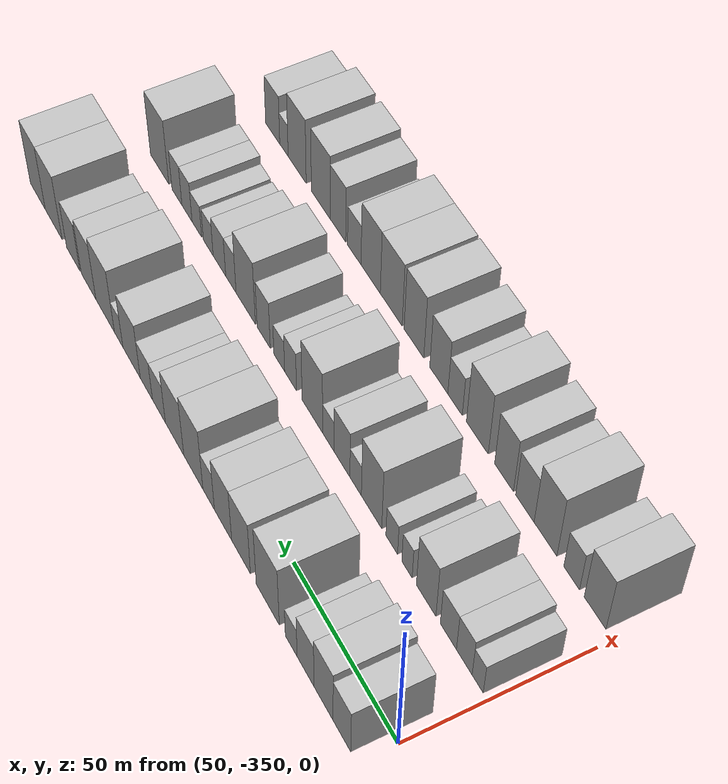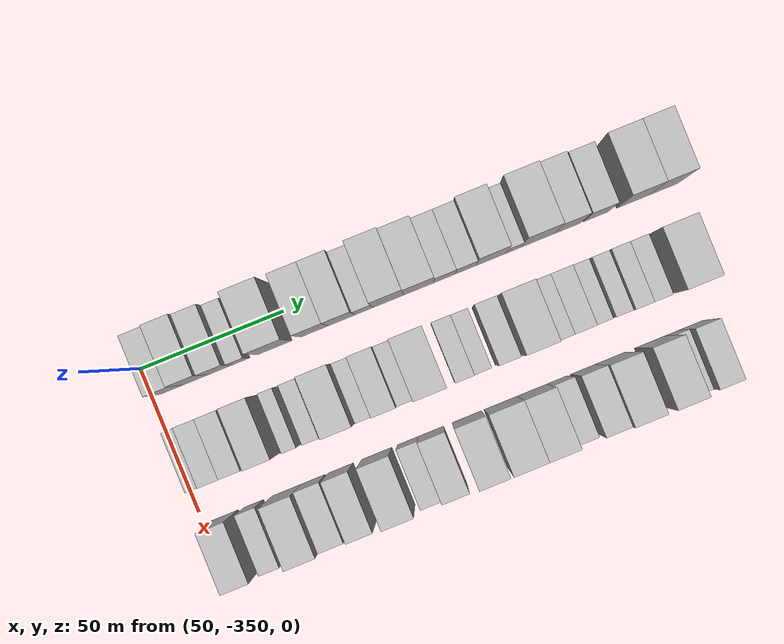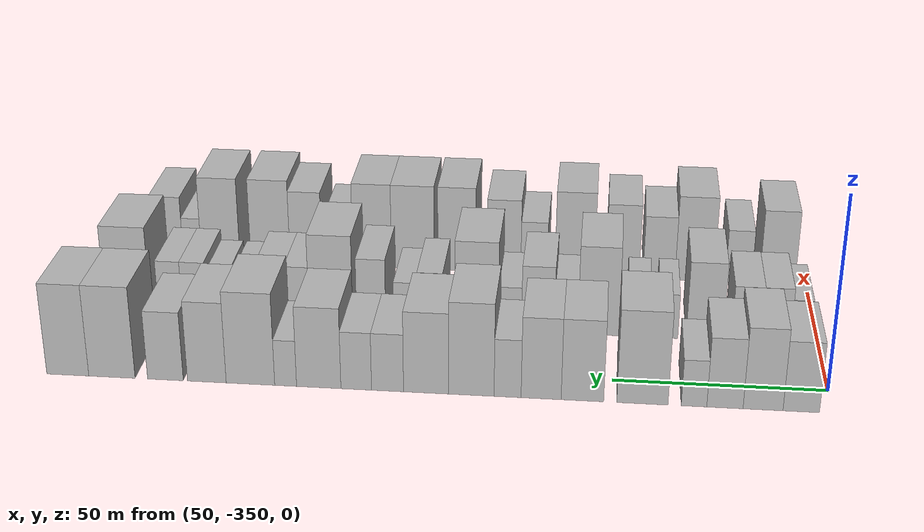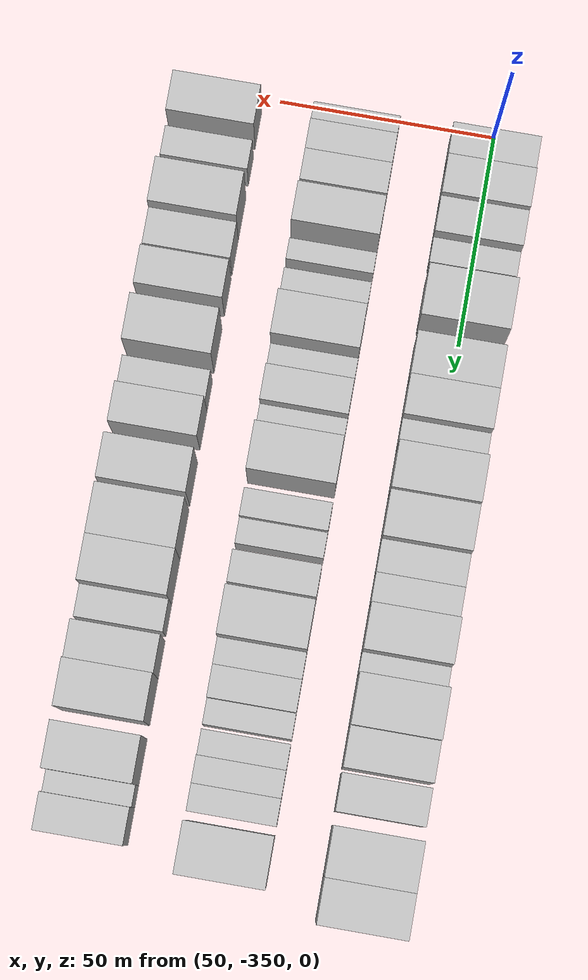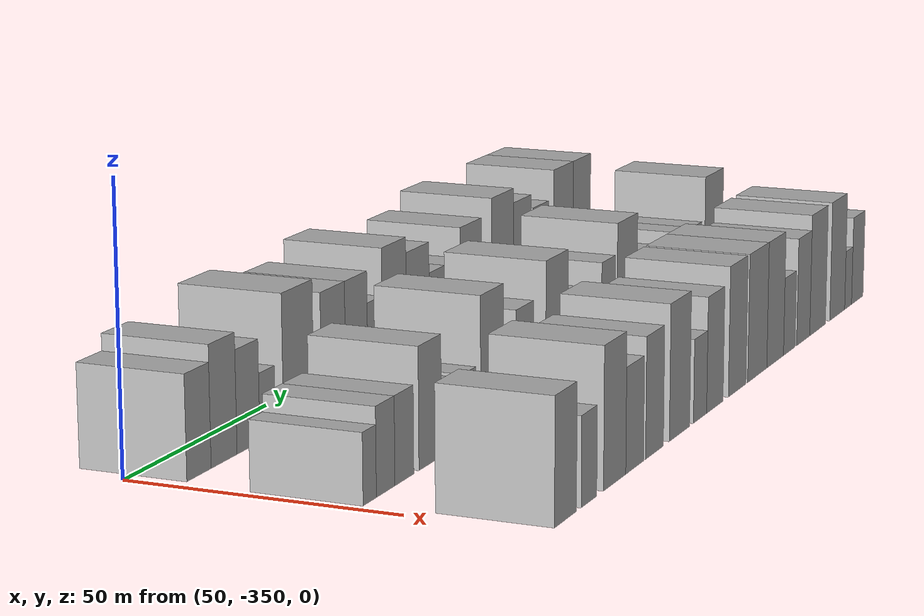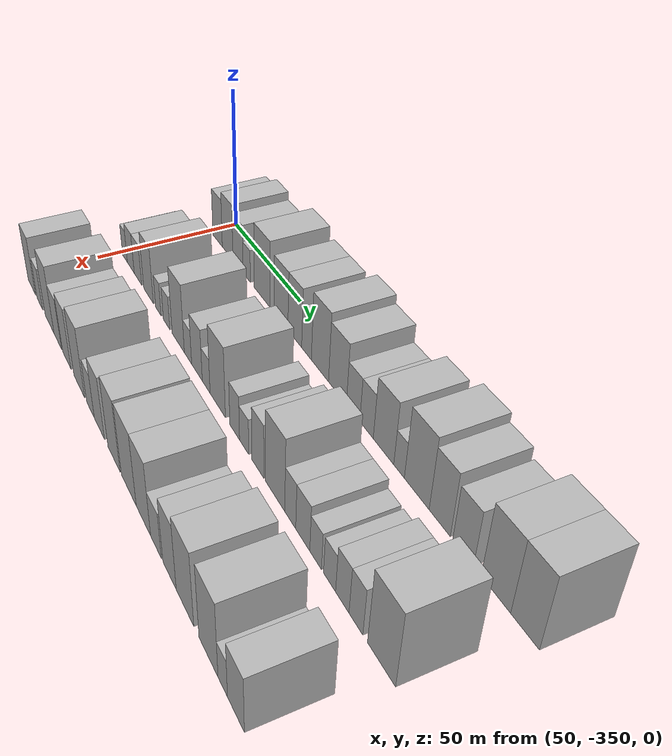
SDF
<sdf version="1.6">
 <world name="default">
  <model name="building_1">
   <static>1</static>
   <pose>50.0000 -342.8980 0 0.000000 0.000000 0.000000</pose>
   <link name="link">
    <pose>0 0 9.00 0 0 0</pose>
    <collision name="collision"><geometry><box><size>20.0000 8.2040 18.0000</size></box></geometry></collision>
    <visual name="visual">
     <cast_shadows>0</cast_shadows>
     <geometry><box><size>20.0000 8.2040 18.0000</size></box></geometry>
     <material>
      <script>
       <uri>model://HANNAS_wall/materials/scripts</uri>
       <uri>model://HANNAS_wall/materials/textures</uri>
       <name>vrc/HANNAS_wall</name>
      </script>
     </material>
    </visual>
   </link>
  </model>
  <model name="building_2">
   <static>1</static>
   <pose>50.0000 -334.2920 0 0.000000 0.000000 0.000000</pose>
   <link name="link">
    <pose>0 0 10.50 0 0 0</pose>
    <collision name="collision"><geometry><box><size>20.0000 9.0080 21.0000</size></box></geometry></collision>
    <visual name="visual">
     <cast_shadows>0</cast_shadows>
     <geometry><box><size>20.0000 9.0080 21.0000</size></box></geometry>
     <material>
      <script>
       <uri>model://HANNAS_wall/materials/scripts</uri>
       <uri>model://HANNAS_wall/materials/textures</uri>
       <name>vrc/HANNAS_wall</name>
      </script>
     </material>
    </visual>
   </link>
  </model>
  <model name="building_3">
   <static>1</static>
   <pose>50.0000 -325.6805 0 0.000000 0.000000 0.000000</pose>
   <link name="link">
    <pose>0 0 9.00 0 0 0</pose>
    <collision name="collision"><geometry><box><size>20.0000 8.2150 18.0000</size></box></geometry></collision>
    <visual name="visual">
     <cast_shadows>0</cast_shadows>
     <geometry><box><size>20.0000 8.2150 18.0000</size></box></geometry>
     <material>
      <script>
       <uri>model://HANNAS_wall/materials/scripts</uri>
       <uri>model://HANNAS_wall/materials/textures</uri>
       <name>vrc/HANNAS_wall</name>
      </script>
     </material>
    </visual>
   </link>
  </model>
  <model name="building_4">
   <static>1</static>
   <pose>50.0000 -318.6724 0 0.000000 0.000000 0.000000</pose>
   <link name="link">
    <pose>0 0 6.00 0 0 0</pose>
    <collision name="collision"><geometry><box><size>20.0000 5.8012 12.0000</size></box></geometry></collision>
    <visual name="visual">
     <cast_shadows>0</cast_shadows>
     <geometry><box><size>20.0000 5.8012 12.0000</size></box></geometry>
     <material>
      <script>
       <uri>model://HANNAS_wall/materials/scripts</uri>
       <uri>model://HANNAS_wall/materials/textures</uri>
       <name>vrc/HANNAS_wall</name>
      </script>
     </material>
    </visual>
   </link>
  </model>
  <model name="building_5">
   <static>1</static>
   <pose>50.0000 -306.9197 0 0.000000 0.000000 0.000000</pose>
   <link name="link">
    <pose>0 0 12.00 0 0 0</pose>
    <collision name="collision"><geometry><box><size>20.0000 11.7041 24.0000</size></box></geometry></collision>
    <visual name="visual">
     <cast_shadows>0</cast_shadows>
     <geometry><box><size>20.0000 11.7041 24.0000</size></box></geometry>
     <material>
      <script>
       <uri>model://HANNAS_wall/materials/scripts</uri>
       <uri>model://HANNAS_wall/materials/textures</uri>
       <name>vrc/HANNAS_wall</name>
      </script>
     </material>
    </visual>
   </link>
  </model>
  <model name="building_6">
   <static>1</static>
   <pose>50.0000 -293.1795 0 0.000000 0.000000 0.000000</pose>
   <link name="link">
    <pose>0 0 10.50 0 0 0</pose>
    <collision name="collision"><geometry><box><size>20.0000 9.7764 21.0000</size></box></geometry></collision>
    <visual name="visual">
     <cast_shadows>0</cast_shadows>
     <geometry><box><size>20.0000 9.7764 21.0000</size></box></geometry>
     <material>
      <script>
       <uri>model://HANNAS_wall/materials/scripts</uri>
       <uri>model://HANNAS_wall/materials/textures</uri>
       <name>vrc/HANNAS_wall</name>
      </script>
     </material>
    </visual>
   </link>
  </model>
  <model name="building_7">
   <static>1</static>
   <pose>50.0000 -283.6696 0 0.000000 0.000000 0.000000</pose>
   <link name="link">
    <pose>0 0 10.50 0 0 0</pose>
    <collision name="collision"><geometry><box><size>20.0000 9.2435 21.0000</size></box></geometry></collision>
    <visual name="visual">
     <cast_shadows>0</cast_shadows>
     <geometry><box><size>20.0000 9.2435 21.0000</size></box></geometry>
     <material>
      <script>
       <uri>model://HANNAS_wall/materials/scripts</uri>
       <uri>model://HANNAS_wall/materials/textures</uri>
       <name>vrc/HANNAS_wall</name>
      </script>
     </material>
    </visual>
   </link>
  </model>
  <model name="building_8">
   <static>1</static>
   <pose>50.0000 -275.9182 0 0.000000 0.000000 0.000000</pose>
   <link name="link">
    <pose>0 0 7.50 0 0 0</pose>
    <collision name="collision"><geometry><box><size>20.0000 6.2592 15.0000</size></box></geometry></collision>
    <visual name="visual">
     <cast_shadows>0</cast_shadows>
     <geometry><box><size>20.0000 6.2592 15.0000</size></box></geometry>
     <material>
      <script>
       <uri>model://HANNAS_wall/materials/scripts</uri>
       <uri>model://HANNAS_wall/materials/textures</uri>
       <name>vrc/HANNAS_wall</name>
      </script>
     </material>
    </visual>
   </link>
  </model>
  <model name="building_9">
   <static>1</static>
   <pose>50.0000 -267.4765 0 0.000000 0.000000 0.000000</pose>
   <link name="link">
    <pose>0 0 12.00 0 0 0</pose>
    <collision name="collision"><geometry><box><size>20.0000 10.6244 24.0000</size></box></geometry></collision>
    <visual name="visual">
     <cast_shadows>0</cast_shadows>
     <geometry><box><size>20.0000 10.6244 24.0000</size></box></geometry>
     <material>
      <script>
       <uri>model://HANNAS_wall/materials/scripts</uri>
       <uri>model://HANNAS_wall/materials/textures</uri>
       <name>vrc/HANNAS_wall</name>
      </script>
     </material>
    </visual>
   </link>
  </model>
  <model name="building_10">
   <static>1</static>
   <pose>50.0000 -256.9345 0 0.000000 0.000000 0.000000</pose>
   <link name="link">
    <pose>0 0 10.50 0 0 0</pose>
    <collision name="collision"><geometry><box><size>20.0000 10.4595 21.0000</size></box></geometry></collision>
    <visual name="visual">
     <cast_shadows>0</cast_shadows>
     <geometry><box><size>20.0000 10.4595 21.0000</size></box></geometry>
     <material>
      <script>
       <uri>model://HANNAS_wall/materials/scripts</uri>
       <uri>model://HANNAS_wall/materials/textures</uri>
       <name>vrc/HANNAS_wall</name>
      </script>
     </material>
    </visual>
   </link>
  </model>
  <model name="building_11">
   <static>1</static>
   <pose>50.0000 -247.9561 0 0.000000 0.000000 0.000000</pose>
   <link name="link">
    <pose>0 0 7.50 0 0 0</pose>
    <collision name="collision"><geometry><box><size>20.0000 7.4973 15.0000</size></box></geometry></collision>
    <visual name="visual">
     <cast_shadows>0</cast_shadows>
     <geometry><box><size>20.0000 7.4973 15.0000</size></box></geometry>
     <material>
      <script>
       <uri>model://HANNAS_wall/materials/scripts</uri>
       <uri>model://HANNAS_wall/materials/textures</uri>
       <name>vrc/HANNAS_wall</name>
      </script>
     </material>
    </visual>
   </link>
  </model>
  <model name="building_12">
   <static>1</static>
   <pose>50.0000 -240.6093 0 0.000000 0.000000 0.000000</pose>
   <link name="link">
    <pose>0 0 7.50 0 0 0</pose>
    <collision name="collision"><geometry><box><size>20.0000 7.1963 15.0000</size></box></geometry></collision>
    <visual name="visual">
     <cast_shadows>0</cast_shadows>
     <geometry><box><size>20.0000 7.1963 15.0000</size></box></geometry>
     <material>
      <script>
       <uri>model://HANNAS_wall/materials/scripts</uri>
       <uri>model://HANNAS_wall/materials/textures</uri>
       <name>vrc/HANNAS_wall</name>
      </script>
     </material>
    </visual>
   </link>
  </model>
  <model name="building_13">
   <static>1</static>
   <pose>50.0000 -231.7747 0 0.000000 0.000000 0.000000</pose>
   <link name="link">
    <pose>0 0 10.50 0 0 0</pose>
    <collision name="collision"><geometry><box><size>20.0000 10.4729 21.0000</size></box></geometry></collision>
    <visual name="visual">
     <cast_shadows>0</cast_shadows>
     <geometry><box><size>20.0000 10.4729 21.0000</size></box></geometry>
     <material>
      <script>
       <uri>model://HANNAS_wall/materials/scripts</uri>
       <uri>model://HANNAS_wall/materials/textures</uri>
       <name>vrc/HANNAS_wall</name>
      </script>
     </material>
    </visual>
   </link>
  </model>
  <model name="building_14">
   <static>1</static>
   <pose>50.0000 -223.9534 0 0.000000 0.000000 0.000000</pose>
   <link name="link">
    <pose>0 0 6.00 0 0 0</pose>
    <collision name="collision"><geometry><box><size>20.0000 5.1696 12.0000</size></box></geometry></collision>
    <visual name="visual">
     <cast_shadows>0</cast_shadows>
     <geometry><box><size>20.0000 5.1696 12.0000</size></box></geometry>
     <material>
      <script>
       <uri>model://HANNAS_wall/materials/scripts</uri>
       <uri>model://HANNAS_wall/materials/textures</uri>
       <name>vrc/HANNAS_wall</name>
      </script>
     </material>
    </visual>
   </link>
  </model>
  <model name="building_15">
   <static>1</static>
   <pose>50.0000 -215.5958 0 0.000000 0.000000 0.000000</pose>
   <link name="link">
    <pose>0 0 12.00 0 0 0</pose>
    <collision name="collision"><geometry><box><size>20.0000 11.5456 24.0000</size></box></geometry></collision>
    <visual name="visual">
     <cast_shadows>0</cast_shadows>
     <geometry><box><size>20.0000 11.5456 24.0000</size></box></geometry>
     <material>
      <script>
       <uri>model://HANNAS_wall/materials/scripts</uri>
       <uri>model://HANNAS_wall/materials/textures</uri>
       <name>vrc/HANNAS_wall</name>
      </script>
     </material>
    </visual>
   </link>
  </model>
  <model name="building_16">
   <static>1</static>
   <pose>50.0000 -205.1998 0 0.000000 0.000000 0.000000</pose>
   <link name="link">
    <pose>0 0 10.50 0 0 0</pose>
    <collision name="collision"><geometry><box><size>20.0000 9.2464 21.0000</size></box></geometry></collision>
    <visual name="visual">
     <cast_shadows>0</cast_shadows>
     <geometry><box><size>20.0000 9.2464 21.0000</size></box></geometry>
     <material>
      <script>
       <uri>model://HANNAS_wall/materials/scripts</uri>
       <uri>model://HANNAS_wall/materials/textures</uri>
       <name>vrc/HANNAS_wall</name>
      </script>
     </material>
    </visual>
   </link>
  </model>
  <model name="building_17">
   <static>1</static>
   <pose>50.0000 -195.2882 0 0.000000 0.000000 0.000000</pose>
   <link name="link">
    <pose>0 0 9.00 0 0 0</pose>
    <collision name="collision"><geometry><box><size>20.0000 8.5769 18.0000</size></box></geometry></collision>
    <visual name="visual">
     <cast_shadows>0</cast_shadows>
     <geometry><box><size>20.0000 8.5769 18.0000</size></box></geometry>
     <material>
      <script>
       <uri>model://HANNAS_wall/materials/scripts</uri>
       <uri>model://HANNAS_wall/materials/textures</uri>
       <name>vrc/HANNAS_wall</name>
      </script>
     </material>
    </visual>
   </link>
  </model>
  <model name="building_18">
   <static>1</static>
   <pose>50.0000 -182.4111 0 0.000000 0.000000 0.000000</pose>
   <link name="link">
    <pose>0 0 12.00 0 0 0</pose>
    <collision name="collision"><geometry><box><size>20.0000 11.1772 24.0000</size></box></geometry></collision>
    <visual name="visual">
     <cast_shadows>0</cast_shadows>
     <geometry><box><size>20.0000 11.1772 24.0000</size></box></geometry>
     <material>
      <script>
       <uri>model://HANNAS_wall/materials/scripts</uri>
       <uri>model://HANNAS_wall/materials/textures</uri>
       <name>vrc/HANNAS_wall</name>
      </script>
     </material>
    </visual>
   </link>
  </model>
  <model name="building_19">
   <static>1</static>
   <pose>50.0000 -171.7365 0 0.000000 0.000000 0.000000</pose>
   <link name="link">
    <pose>0 0 12.00 0 0 0</pose>
    <collision name="collision"><geometry><box><size>20.0000 10.1720 24.0000</size></box></geometry></collision>
    <visual name="visual">
     <cast_shadows>0</cast_shadows>
     <geometry><box><size>20.0000 10.1720 24.0000</size></box></geometry>
     <material>
      <script>
       <uri>model://HANNAS_wall/materials/scripts</uri>
       <uri>model://HANNAS_wall/materials/textures</uri>
       <name>vrc/HANNAS_wall</name>
      </script>
     </material>
    </visual>
   </link>
  </model>
  <model name="building_78">
   <static>1</static>
   <pose>82.0000 -345.5595 0 0.000000 0.000000 0.000000</pose>
   <link name="link">
    <pose>0 0 6.00 0 0 0</pose>
    <collision name="collision"><geometry><box><size>20.0000 4.8810 12.0000</size></box></geometry></collision>
    <visual name="visual">
     <cast_shadows>0</cast_shadows>
     <geometry><box><size>20.0000 4.8810 12.0000</size></box></geometry>
     <material>
      <script>
       <uri>model://HANNAS_wall/materials/scripts</uri>
       <uri>model://HANNAS_wall/materials/textures</uri>
       <name>vrc/HANNAS_wall</name>
      </script>
     </material>
    </visual>
   </link>
  </model>
  <model name="building_79">
   <static>1</static>
   <pose>82.0000 -339.6279 0 0.000000 0.000000 0.000000</pose>
   <link name="link">
    <pose>0 0 7.50 0 0 0</pose>
    <collision name="collision"><geometry><box><size>20.0000 6.9822 15.0000</size></box></geometry></collision>
    <visual name="visual">
     <cast_shadows>0</cast_shadows>
     <geometry><box><size>20.0000 6.9822 15.0000</size></box></geometry>
     <material>
      <script>
       <uri>model://HANNAS_wall/materials/scripts</uri>
       <uri>model://HANNAS_wall/materials/textures</uri>
       <name>vrc/HANNAS_wall</name>
      </script>
     </material>
    </visual>
   </link>
  </model>
  <model name="building_80">
   <static>1</static>
   <pose>82.0000 -332.4839 0 0.000000 0.000000 0.000000</pose>
   <link name="link">
    <pose>0 0 7.50 0 0 0</pose>
    <collision name="collision"><geometry><box><size>20.0000 7.3058 15.0000</size></box></geometry></collision>
    <visual name="visual">
     <cast_shadows>0</cast_shadows>
     <geometry><box><size>20.0000 7.3058 15.0000</size></box></geometry>
     <material>
      <script>
       <uri>model://HANNAS_wall/materials/scripts</uri>
       <uri>model://HANNAS_wall/materials/textures</uri>
       <name>vrc/HANNAS_wall</name>
      </script>
     </material>
    </visual>
   </link>
  </model>
  <model name="building_81">
   <static>1</static>
   <pose>82.0000 -322.3113 0 0.000000 0.000000 0.000000</pose>
   <link name="link">
    <pose>0 0 10.50 0 0 0</pose>
    <collision name="collision"><geometry><box><size>20.0000 9.0396 21.0000</size></box></geometry></collision>
    <visual name="visual">
     <cast_shadows>0</cast_shadows>
     <geometry><box><size>20.0000 9.0396 21.0000</size></box></geometry>
     <material>
      <script>
       <uri>model://HANNAS_wall/materials/scripts</uri>
       <uri>model://HANNAS_wall/materials/textures</uri>
       <name>vrc/HANNAS_wall</name>
      </script>
     </material>
    </visual>
   </link>
  </model>
  <model name="building_82">
   <static>1</static>
   <pose>82.0000 -313.3426 0 0.000000 0.000000 0.000000</pose>
   <link name="link">
    <pose>0 0 6.00 0 0 0</pose>
    <collision name="collision"><geometry><box><size>20.0000 4.8977 12.0000</size></box></geometry></collision>
    <visual name="visual">
     <cast_shadows>0</cast_shadows>
     <geometry><box><size>20.0000 4.8977 12.0000</size></box></geometry>
     <material>
      <script>
       <uri>model://HANNAS_wall/materials/scripts</uri>
       <uri>model://HANNAS_wall/materials/textures</uri>
       <name>vrc/HANNAS_wall</name>
      </script>
     </material>
    </visual>
   </link>
  </model>
  <model name="building_83">
   <static>1</static>
   <pose>82.0000 -306.0730 0 0.000000 0.000000 0.000000</pose>
   <link name="link">
    <pose>0 0 6.00 0 0 0</pose>
    <collision name="collision"><geometry><box><size>20.0000 5.6416 12.0000</size></box></geometry></collision>
    <visual name="visual">
     <cast_shadows>0</cast_shadows>
     <geometry><box><size>20.0000 5.6416 12.0000</size></box></geometry>
     <material>
      <script>
       <uri>model://HANNAS_wall/materials/scripts</uri>
       <uri>model://HANNAS_wall/materials/textures</uri>
       <name>vrc/HANNAS_wall</name>
      </script>
     </material>
    </visual>
   </link>
  </model>
  <model name="building_84">
   <static>1</static>
   <pose>82.0000 -296.2249 0 0.000000 0.000000 0.000000</pose>
   <link name="link">
    <pose>0 0 12.00 0 0 0</pose>
    <collision name="collision"><geometry><box><size>20.0000 10.0544 24.0000</size></box></geometry></collision>
    <visual name="visual">
     <cast_shadows>0</cast_shadows>
     <geometry><box><size>20.0000 10.0544 24.0000</size></box></geometry>
     <material>
      <script>
       <uri>model://HANNAS_wall/materials/scripts</uri>
       <uri>model://HANNAS_wall/materials/textures</uri>
       <name>vrc/HANNAS_wall</name>
      </script>
     </material>
    </visual>
   </link>
  </model>
  <model name="building_85">
   <static>1</static>
   <pose>82.0000 -288.3208 0 0.000000 0.000000 0.000000</pose>
   <link name="link">
    <pose>0 0 6.00 0 0 0</pose>
    <collision name="collision"><geometry><box><size>20.0000 5.7538 12.0000</size></box></geometry></collision>
    <visual name="visual">
     <cast_shadows>0</cast_shadows>
     <geometry><box><size>20.0000 5.7538 12.0000</size></box></geometry>
     <material>
      <script>
       <uri>model://HANNAS_wall/materials/scripts</uri>
       <uri>model://HANNAS_wall/materials/textures</uri>
       <name>vrc/HANNAS_wall</name>
      </script>
     </material>
    </visual>
   </link>
  </model>
  <model name="building_86">
   <static>1</static>
   <pose>82.0000 -281.3581 0 0.000000 0.000000 0.000000</pose>
   <link name="link">
    <pose>0 0 9.00 0 0 0</pose>
    <collision name="collision"><geometry><box><size>20.0000 8.1716 18.0000</size></box></geometry></collision>
    <visual name="visual">
     <cast_shadows>0</cast_shadows>
     <geometry><box><size>20.0000 8.1716 18.0000</size></box></geometry>
     <material>
      <script>
       <uri>model://HANNAS_wall/materials/scripts</uri>
       <uri>model://HANNAS_wall/materials/textures</uri>
       <name>vrc/HANNAS_wall</name>
      </script>
     </material>
    </visual>
   </link>
  </model>
  <model name="building_87">
   <static>1</static>
   <pose>82.0000 -274.3888 0 0.000000 0.000000 0.000000</pose>
   <link name="link">
    <pose>0 0 6.00 0 0 0</pose>
    <collision name="collision"><geometry><box><size>20.0000 5.7670 12.0000</size></box></geometry></collision>
    <visual name="visual">
     <cast_shadows>0</cast_shadows>
     <geometry><box><size>20.0000 5.7670 12.0000</size></box></geometry>
     <material>
      <script>
       <uri>model://HANNAS_wall/materials/scripts</uri>
       <uri>model://HANNAS_wall/materials/textures</uri>
       <name>vrc/HANNAS_wall</name>
      </script>
     </material>
    </visual>
   </link>
  </model>
  <model name="building_88">
   <static>1</static>
   <pose>82.0000 -266.0852 0 0.000000 0.000000 0.000000</pose>
   <link name="link">
    <pose>0 0 12.00 0 0 0</pose>
    <collision name="collision"><geometry><box><size>20.0000 10.8403 24.0000</size></box></geometry></collision>
    <visual name="visual">
     <cast_shadows>0</cast_shadows>
     <geometry><box><size>20.0000 10.8403 24.0000</size></box></geometry>
     <material>
      <script>
       <uri>model://HANNAS_wall/materials/scripts</uri>
       <uri>model://HANNAS_wall/materials/textures</uri>
       <name>vrc/HANNAS_wall</name>
      </script>
     </material>
    </visual>
   </link>
  </model>
  <model name="building_89">
   <static>1</static>
   <pose>82.0000 -254.4634 0 0.000000 0.000000 0.000000</pose>
   <link name="link">
    <pose>0 0 7.50 0 0 0</pose>
    <collision name="collision"><geometry><box><size>20.0000 6.4033 15.0000</size></box></geometry></collision>
    <visual name="visual">
     <cast_shadows>0</cast_shadows>
     <geometry><box><size>20.0000 6.4033 15.0000</size></box></geometry>
     <material>
      <script>
       <uri>model://HANNAS_wall/materials/scripts</uri>
       <uri>model://HANNAS_wall/materials/textures</uri>
       <name>vrc/HANNAS_wall</name>
      </script>
     </material>
    </visual>
   </link>
  </model>
  <model name="building_90">
   <static>1</static>
   <pose>82.0000 -248.3142 0 0.000000 0.000000 0.000000</pose>
   <link name="link">
    <pose>0 0 6.00 0 0 0</pose>
    <collision name="collision"><geometry><box><size>20.0000 5.8952 12.0000</size></box></geometry></collision>
    <visual name="visual">
     <cast_shadows>0</cast_shadows>
     <geometry><box><size>20.0000 5.8952 12.0000</size></box></geometry>
     <material>
      <script>
       <uri>model://HANNAS_wall/materials/scripts</uri>
       <uri>model://HANNAS_wall/materials/textures</uri>
       <name>vrc/HANNAS_wall</name>
      </script>
     </material>
    </visual>
   </link>
  </model>
  <model name="building_91">
   <static>1</static>
   <pose>82.0000 -239.7123 0 0.000000 0.000000 0.000000</pose>
   <link name="link">
    <pose>0 0 9.00 0 0 0</pose>
    <collision name="collision"><geometry><box><size>20.0000 7.3086 18.0000</size></box></geometry></collision>
    <visual name="visual">
     <cast_shadows>0</cast_shadows>
     <geometry><box><size>20.0000 7.3086 18.0000</size></box></geometry>
     <material>
      <script>
       <uri>model://HANNAS_wall/materials/scripts</uri>
       <uri>model://HANNAS_wall/materials/textures</uri>
       <name>vrc/HANNAS_wall</name>
      </script>
     </material>
    </visual>
   </link>
  </model>
  <model name="building_92">
   <static>1</static>
   <pose>82.0000 -229.5432 0 0.000000 0.000000 0.000000</pose>
   <link name="link">
    <pose>0 0 12.00 0 0 0</pose>
    <collision name="collision"><geometry><box><size>20.0000 11.0295 24.0000</size></box></geometry></collision>
    <visual name="visual">
     <cast_shadows>0</cast_shadows>
     <geometry><box><size>20.0000 11.0295 24.0000</size></box></geometry>
     <material>
      <script>
       <uri>model://HANNAS_wall/materials/scripts</uri>
       <uri>model://HANNAS_wall/materials/textures</uri>
       <name>vrc/HANNAS_wall</name>
      </script>
     </material>
    </visual>
   </link>
  </model>
  <model name="building_93">
   <static>1</static>
   <pose>82.0000 -221.0127 0 0.000000 0.000000 0.000000</pose>
   <link name="link">
    <pose>0 0 7.50 0 0 0</pose>
    <collision name="collision"><geometry><box><size>20.0000 6.0316 15.0000</size></box></geometry></collision>
    <visual name="visual">
     <cast_shadows>0</cast_shadows>
     <geometry><box><size>20.0000 6.0316 15.0000</size></box></geometry>
     <material>
      <script>
       <uri>model://HANNAS_wall/materials/scripts</uri>
       <uri>model://HANNAS_wall/materials/textures</uri>
       <name>vrc/HANNAS_wall</name>
      </script>
     </material>
    </visual>
   </link>
  </model>
  <model name="building_94">
   <static>1</static>
   <pose>82.0000 -214.3028 0 0.000000 0.000000 0.000000</pose>
   <link name="link">
    <pose>0 0 7.50 0 0 0</pose>
    <collision name="collision"><geometry><box><size>20.0000 7.3883 15.0000</size></box></geometry></collision>
    <visual name="visual">
     <cast_shadows>0</cast_shadows>
     <geometry><box><size>20.0000 7.3883 15.0000</size></box></geometry>
     <material>
      <script>
       <uri>model://HANNAS_wall/materials/scripts</uri>
       <uri>model://HANNAS_wall/materials/textures</uri>
       <name>vrc/HANNAS_wall</name>
      </script>
     </material>
    </visual>
   </link>
  </model>
  <model name="building_95">
   <static>1</static>
   <pose>82.0000 -207.6687 0 0.000000 0.000000 0.000000</pose>
   <link name="link">
    <pose>0 0 6.00 0 0 0</pose>
    <collision name="collision"><geometry><box><size>20.0000 5.8799 12.0000</size></box></geometry></collision>
    <visual name="visual">
     <cast_shadows>0</cast_shadows>
     <geometry><box><size>20.0000 5.8799 12.0000</size></box></geometry>
     <material>
      <script>
       <uri>model://HANNAS_wall/materials/scripts</uri>
       <uri>model://HANNAS_wall/materials/textures</uri>
       <name>vrc/HANNAS_wall</name>
      </script>
     </material>
    </visual>
   </link>
  </model>
  <model name="building_96">
   <static>1</static>
   <pose>82.0000 -200.8104 0 0.000000 0.000000 0.000000</pose>
   <link name="link">
    <pose>0 0 6.00 0 0 0</pose>
    <collision name="collision"><geometry><box><size>20.0000 5.8366 12.0000</size></box></geometry></collision>
    <visual name="visual">
     <cast_shadows>0</cast_shadows>
     <geometry><box><size>20.0000 5.8366 12.0000</size></box></geometry>
     <material>
      <script>
       <uri>model://HANNAS_wall/materials/scripts</uri>
       <uri>model://HANNAS_wall/materials/textures</uri>
       <name>vrc/HANNAS_wall</name>
      </script>
     </material>
    </visual>
   </link>
  </model>
  <model name="building_97">
   <static>1</static>
   <pose>82.0000 -194.7849 0 0.000000 0.000000 0.000000</pose>
   <link name="link">
    <pose>0 0 7.50 0 0 0</pose>
    <collision name="collision"><geometry><box><size>20.0000 6.2144 15.0000</size></box></geometry></collision>
    <visual name="visual">
     <cast_shadows>0</cast_shadows>
     <geometry><box><size>20.0000 6.2144 15.0000</size></box></geometry>
     <material>
      <script>
       <uri>model://HANNAS_wall/materials/scripts</uri>
       <uri>model://HANNAS_wall/materials/textures</uri>
       <name>vrc/HANNAS_wall</name>
      </script>
     </material>
    </visual>
   </link>
  </model>
  <model name="building_98">
   <static>1</static>
   <pose>82.0000 -188.5929 0 0.000000 0.000000 0.000000</pose>
   <link name="link">
    <pose>0 0 7.50 0 0 0</pose>
    <collision name="collision"><geometry><box><size>20.0000 6.1698 15.0000</size></box></geometry></collision>
    <visual name="visual">
     <cast_shadows>0</cast_shadows>
     <geometry><box><size>20.0000 6.1698 15.0000</size></box></geometry>
     <material>
      <script>
       <uri>model://HANNAS_wall/materials/scripts</uri>
       <uri>model://HANNAS_wall/materials/textures</uri>
       <name>vrc/HANNAS_wall</name>
      </script>
     </material>
    </visual>
   </link>
  </model>
  <model name="building_99">
   <static>1</static>
   <pose>82.0000 -177.6939 0 0.000000 0.000000 0.000000</pose>
   <link name="link">
    <pose>0 0 12.00 0 0 0</pose>
    <collision name="collision"><geometry><box><size>20.0000 11.6280 24.0000</size></box></geometry></collision>
    <visual name="visual">
     <cast_shadows>0</cast_shadows>
     <geometry><box><size>20.0000 11.6280 24.0000</size></box></geometry>
     <material>
      <script>
       <uri>model://HANNAS_wall/materials/scripts</uri>
       <uri>model://HANNAS_wall/materials/textures</uri>
       <name>vrc/HANNAS_wall</name>
      </script>
     </material>
    </visual>
   </link>
  </model>
  <model name="building_161">
   <static>1</static>
   <pose>114.0000 -342.3969 0 0.000000 0.000000 0.000000</pose>
   <link name="link">
    <pose>0 0 10.50 0 0 0</pose>
    <collision name="collision"><geometry><box><size>20.0000 9.2062 21.0000</size></box></geometry></collision>
    <visual name="visual">
     <cast_shadows>0</cast_shadows>
     <geometry><box><size>20.0000 9.2062 21.0000</size></box></geometry>
     <material>
      <script>
       <uri>model://HANNAS_wall/materials/scripts</uri>
       <uri>model://HANNAS_wall/materials/textures</uri>
       <name>vrc/HANNAS_wall</name>
      </script>
     </material>
    </visual>
   </link>
  </model>
  <model name="building_162">
   <static>1</static>
   <pose>114.0000 -332.3903 0 0.000000 0.000000 0.000000</pose>
   <link name="link">
    <pose>0 0 7.50 0 0 0</pose>
    <collision name="collision"><geometry><box><size>20.0000 6.8070 15.0000</size></box></geometry></collision>
    <visual name="visual">
     <cast_shadows>0</cast_shadows>
     <geometry><box><size>20.0000 6.8070 15.0000</size></box></geometry>
     <material>
      <script>
       <uri>model://HANNAS_wall/materials/scripts</uri>
       <uri>model://HANNAS_wall/materials/textures</uri>
       <name>vrc/HANNAS_wall</name>
      </script>
     </material>
    </visual>
   </link>
  </model>
  <model name="building_163">
   <static>1</static>
   <pose>114.0000 -320.9087 0 0.000000 0.000000 0.000000</pose>
   <link name="link">
    <pose>0 0 12.00 0 0 0</pose>
    <collision name="collision"><geometry><box><size>20.0000 10.1561 24.0000</size></box></geometry></collision>
    <visual name="visual">
     <cast_shadows>0</cast_shadows>
     <geometry><box><size>20.0000 10.1561 24.0000</size></box></geometry>
     <material>
      <script>
       <uri>model://HANNAS_wall/materials/scripts</uri>
       <uri>model://HANNAS_wall/materials/textures</uri>
       <name>vrc/HANNAS_wall</name>
      </script>
     </material>
    </visual>
   </link>
  </model>
  <model name="building_164">
   <static>1</static>
   <pose>114.0000 -311.6426 0 0.000000 0.000000 0.000000</pose>
   <link name="link">
    <pose>0 0 9.00 0 0 0</pose>
    <collision name="collision"><geometry><box><size>20.0000 8.3761 18.0000</size></box></geometry></collision>
    <visual name="visual">
     <cast_shadows>0</cast_shadows>
     <geometry><box><size>20.0000 8.3761 18.0000</size></box></geometry>
     <material>
      <script>
       <uri>model://HANNAS_wall/materials/scripts</uri>
       <uri>model://HANNAS_wall/materials/textures</uri>
       <name>vrc/HANNAS_wall</name>
      </script>
     </material>
    </visual>
   </link>
  </model>
  <model name="building_165">
   <static>1</static>
   <pose>114.0000 -302.0882 0 0.000000 0.000000 0.000000</pose>
   <link name="link">
    <pose>0 0 10.50 0 0 0</pose>
    <collision name="collision"><geometry><box><size>20.0000 8.7329 21.0000</size></box></geometry></collision>
    <visual name="visual">
     <cast_shadows>0</cast_shadows>
     <geometry><box><size>20.0000 8.7329 21.0000</size></box></geometry>
     <material>
      <script>
       <uri>model://HANNAS_wall/materials/scripts</uri>
       <uri>model://HANNAS_wall/materials/textures</uri>
       <name>vrc/HANNAS_wall</name>
      </script>
     </material>
    </visual>
   </link>
  </model>
  <model name="building_166">
   <static>1</static>
   <pose>114.0000 -289.5116 0 0.000000 0.000000 0.000000</pose>
   <link name="link">
    <pose>0 0 12.00 0 0 0</pose>
    <collision name="collision"><geometry><box><size>20.0000 10.4203 24.0000</size></box></geometry></collision>
    <visual name="visual">
     <cast_shadows>0</cast_shadows>
     <geometry><box><size>20.0000 10.4203 24.0000</size></box></geometry>
     <material>
      <script>
       <uri>model://HANNAS_wall/materials/scripts</uri>
       <uri>model://HANNAS_wall/materials/textures</uri>
       <name>vrc/HANNAS_wall</name>
      </script>
     </material>
    </visual>
   </link>
  </model>
  <model name="building_167">
   <static>1</static>
   <pose>114.0000 -278.7714 0 0.000000 0.000000 0.000000</pose>
   <link name="link">
    <pose>0 0 7.50 0 0 0</pose>
    <collision name="collision"><geometry><box><size>20.0000 7.0600 15.0000</size></box></geometry></collision>
    <visual name="visual">
     <cast_shadows>0</cast_shadows>
     <geometry><box><size>20.0000 7.0600 15.0000</size></box></geometry>
     <material>
      <script>
       <uri>model://HANNAS_wall/materials/scripts</uri>
       <uri>model://HANNAS_wall/materials/textures</uri>
       <name>vrc/HANNAS_wall</name>
      </script>
     </material>
    </visual>
   </link>
  </model>
  <model name="building_168">
   <static>1</static>
   <pose>114.0000 -270.7406 0 0.000000 0.000000 0.000000</pose>
   <link name="link">
    <pose>0 0 10.50 0 0 0</pose>
    <collision name="collision"><geometry><box><size>20.0000 9.0015 21.0000</size></box></geometry></collision>
    <visual name="visual">
     <cast_shadows>0</cast_shadows>
     <geometry><box><size>20.0000 9.0015 21.0000</size></box></geometry>
     <material>
      <script>
       <uri>model://HANNAS_wall/materials/scripts</uri>
       <uri>model://HANNAS_wall/materials/textures</uri>
       <name>vrc/HANNAS_wall</name>
      </script>
     </material>
    </visual>
   </link>
  </model>
  <model name="building_169">
   <static>1</static>
   <pose>114.0000 -258.2078 0 0.000000 0.000000 0.000000</pose>
   <link name="link">
    <pose>0 0 12.00 0 0 0</pose>
    <collision name="collision"><geometry><box><size>20.0000 10.0642 24.0000</size></box></geometry></collision>
    <visual name="visual">
     <cast_shadows>0</cast_shadows>
     <geometry><box><size>20.0000 10.0642 24.0000</size></box></geometry>
     <material>
      <script>
       <uri>model://HANNAS_wall/materials/scripts</uri>
       <uri>model://HANNAS_wall/materials/textures</uri>
       <name>vrc/HANNAS_wall</name>
      </script>
     </material>
    </visual>
   </link>
  </model>
  <model name="building_170">
   <static>1</static>
   <pose>114.0000 -246.4407 0 0.000000 0.000000 0.000000</pose>
   <link name="link">
    <pose>0 0 12.00 0 0 0</pose>
    <collision name="collision"><geometry><box><size>20.0000 11.4699 24.0000</size></box></geometry></collision>
    <visual name="visual">
     <cast_shadows>0</cast_shadows>
     <geometry><box><size>20.0000 11.4699 24.0000</size></box></geometry>
     <material>
      <script>
       <uri>model://HANNAS_wall/materials/scripts</uri>
       <uri>model://HANNAS_wall/materials/textures</uri>
       <name>vrc/HANNAS_wall</name>
      </script>
     </material>
    </visual>
   </link>
  </model>
  <model name="building_171">
   <static>1</static>
   <pose>114.0000 -235.5248 0 0.000000 0.000000 0.000000</pose>
   <link name="link">
    <pose>0 0 12.00 0 0 0</pose>
    <collision name="collision"><geometry><box><size>20.0000 10.3620 24.0000</size></box></geometry></collision>
    <visual name="visual">
     <cast_shadows>0</cast_shadows>
     <geometry><box><size>20.0000 10.3620 24.0000</size></box></geometry>
     <material>
      <script>
       <uri>model://HANNAS_wall/materials/scripts</uri>
       <uri>model://HANNAS_wall/materials/textures</uri>
       <name>vrc/HANNAS_wall</name>
      </script>
     </material>
    </visual>
   </link>
  </model>
  <model name="building_172">
   <static>1</static>
   <pose>114.0000 -226.6653 0 0.000000 0.000000 0.000000</pose>
   <link name="link">
    <pose>0 0 7.50 0 0 0</pose>
    <collision name="collision"><geometry><box><size>20.0000 7.3571 15.0000</size></box></geometry></collision>
    <visual name="visual">
     <cast_shadows>0</cast_shadows>
     <geometry><box><size>20.0000 7.3571 15.0000</size></box></geometry>
     <material>
      <script>
       <uri>model://HANNAS_wall/materials/scripts</uri>
       <uri>model://HANNAS_wall/materials/textures</uri>
       <name>vrc/HANNAS_wall</name>
      </script>
     </material>
    </visual>
   </link>
  </model>
  <model name="building_173">
   <static>1</static>
   <pose>114.0000 -217.6671 0 0.000000 0.000000 0.000000</pose>
   <link name="link">
    <pose>0 0 10.50 0 0 0</pose>
    <collision name="collision"><geometry><box><size>20.0000 8.6392 21.0000</size></box></geometry></collision>
    <visual name="visual">
     <cast_shadows>0</cast_shadows>
     <geometry><box><size>20.0000 8.6392 21.0000</size></box></geometry>
     <material>
      <script>
       <uri>model://HANNAS_wall/materials/scripts</uri>
       <uri>model://HANNAS_wall/materials/textures</uri>
       <name>vrc/HANNAS_wall</name>
      </script>
     </material>
    </visual>
   </link>
  </model>
  <model name="building_174">
   <static>1</static>
   <pose>114.0000 -208.0148 0 0.000000 0.000000 0.000000</pose>
   <link name="link">
    <pose>0 0 12.00 0 0 0</pose>
    <collision name="collision"><geometry><box><size>20.0000 10.6654 24.0000</size></box></geometry></collision>
    <visual name="visual">
     <cast_shadows>0</cast_shadows>
     <geometry><box><size>20.0000 10.6654 24.0000</size></box></geometry>
     <material>
      <script>
       <uri>model://HANNAS_wall/materials/scripts</uri>
       <uri>model://HANNAS_wall/materials/textures</uri>
       <name>vrc/HANNAS_wall</name>
      </script>
     </material>
    </visual>
   </link>
  </model>
  <model name="building_175">
   <static>1</static>
   <pose>114.0000 -194.4197 0 0.000000 0.000000 0.000000</pose>
   <link name="link">
    <pose>0 0 12.00 0 0 0</pose>
    <collision name="collision"><geometry><box><size>20.0000 10.5249 24.0000</size></box></geometry></collision>
    <visual name="visual">
     <cast_shadows>0</cast_shadows>
     <geometry><box><size>20.0000 10.5249 24.0000</size></box></geometry>
     <material>
      <script>
       <uri>model://HANNAS_wall/materials/scripts</uri>
       <uri>model://HANNAS_wall/materials/textures</uri>
       <name>vrc/HANNAS_wall</name>
      </script>
     </material>
    </visual>
   </link>
  </model>
  <model name="building_176">
   <static>1</static>
   <pose>114.0000 -186.6660 0 0.000000 0.000000 0.000000</pose>
   <link name="link">
    <pose>0 0 6.00 0 0 0</pose>
    <collision name="collision"><geometry><box><size>20.0000 4.9824 12.0000</size></box></geometry></collision>
    <visual name="visual">
     <cast_shadows>0</cast_shadows>
     <geometry><box><size>20.0000 4.9824 12.0000</size></box></geometry>
     <material>
      <script>
       <uri>model://HANNAS_wall/materials/scripts</uri>
       <uri>model://HANNAS_wall/materials/textures</uri>
       <name>vrc/HANNAS_wall</name>
      </script>
     </material>
    </visual>
   </link>
  </model>
  <model name="building_177">
   <static>1</static>
   <pose>114.0000 -179.9572 0 0.000000 0.000000 0.000000</pose>
   <link name="link">
    <pose>0 0 9.00 0 0 0</pose>
    <collision name="collision"><geometry><box><size>20.0000 8.4353 18.0000</size></box></geometry></collision>
    <visual name="visual">
     <cast_shadows>0</cast_shadows>
     <geometry><box><size>20.0000 8.4353 18.0000</size></box></geometry>
     <material>
      <script>
       <uri>model://HANNAS_wall/materials/scripts</uri>
       <uri>model://HANNAS_wall/materials/textures</uri>
       <name>vrc/HANNAS_wall</name>
      </script>
     </material>
    </visual>
   </link>
  </model>
 </world>
</sdf>
